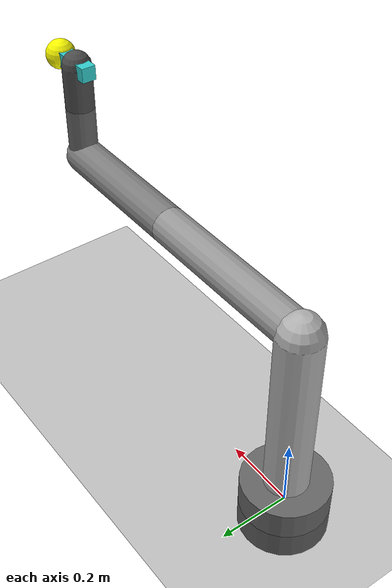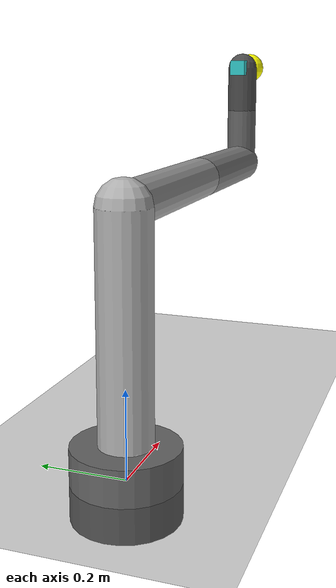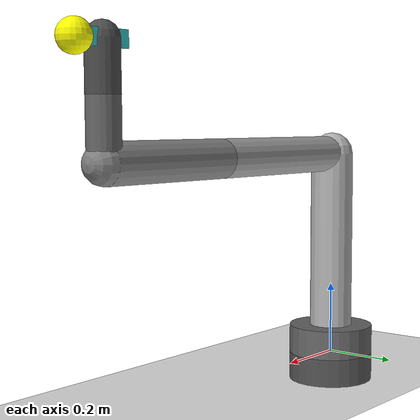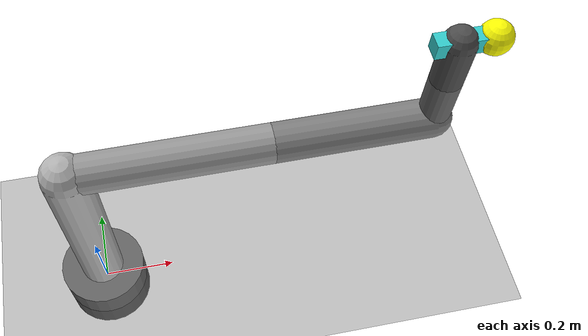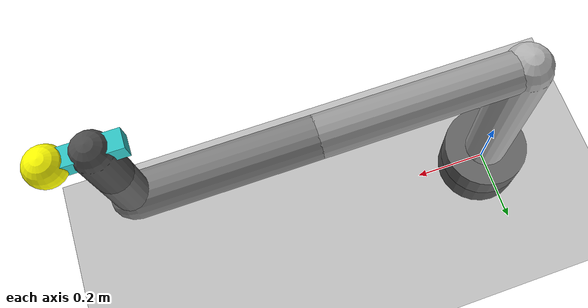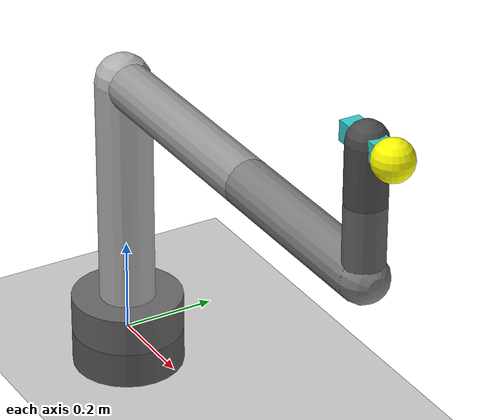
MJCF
<mujoco model="simple_6dof_serial_arm">
  <compiler angle="radian"/>
  <option timestep="0.01" gravity="0 0 -9.81"/>

  <worldbody>
    <light diffuse="0.8 0.8 0.8" pos="2 2 3" dir="-2 -2 -3"/>
    <geom type="plane" size="2 2 0.1" rgba="0.2 0.2 0.2 1"/>

    <!-- Base / ground link -->
    <body name="base" pos="0 0 0">
      <geom type="cylinder" size="0.12 0.08" rgba="0.4 0.4 0.4 1" euler="0 0 0"/>

      <!-- Joint 1: waist (Z axis) -->
      <body name="link1" pos="0 0 0.08">
        <joint name="joint1" type="hinge" axis="0 0 1" range="-3.14 3.14" damping="0.5"/>
        <geom type="capsule" fromto="0 0 0 0 0 0.5" size="0.06" rgba="0.7 0.7 0.7 1"/>

        <!-- Joint 2: shoulder (Y axis) -->
        <body name="link2" pos="0 0 0.5">
          <joint name="joint2" type="hinge" axis="0 1 0" range="-1.57 1.57" damping="0.5"/>
          <geom type="capsule" fromto="0 0 0 0.5 0 0" size="0.05" rgba="0.6 0.6 0.6 1"/>

          <!-- Joint 3: elbow (Y axis) -->
          <body name="link3" pos="0.5 0 0">
            <joint name="joint3" type="hinge" axis="0 1 0" range="-1.57 1.57" damping="0.5"/>
            <geom type="capsule" fromto="0 0 0 0.4 0 0" size="0.05" rgba="0.5 0.5 0.5 1"/>

            <!-- Joint 4: wrist roll (X axis) -->
            <body name="link4" pos="0.4 0 0">
              <joint name="joint4" type="hinge" axis="1 0 0" range="-3.14 3.14" damping="0.2"/>
              <geom type="capsule" fromto="0 0 0 0 0 0.15" size="0.04" rgba="0.4 0.4 0.4 1"/>

              <!-- Joint 5: wrist pitch (Y axis) -->
              <body name="link5" pos="0 0 0.15">
                <joint name="joint5" type="hinge" axis="0 1 0" range="-1.57 1.57" damping="0.2"/>
                <geom type="capsule" fromto="0 0 0 0 0 0.12" size="0.04" rgba="0.3 0.3 0.3 1"/>

                <!-- Joint 6: wrist yaw (Z axis) -->
                <body name="link6" pos="0 0 0.12">
                  <joint name="joint6" type="hinge" axis="0 0 1" range="-3.14 3.14" damping="0.2"/>
                  <geom type="box" size="0.06 0.02 0.02" rgba="0.2 0.8 0.8 1"/>

                  <!-- End-effector site -->
                  <site name="ee" pos="0.08 0 0" size="0.04" rgba="1 1 0 1"/>
                </body>
              </body>
            </body>
          </body>
        </body>
      </body>
    </body>
  </worldbody>

  <actuator>
    <position joint="joint1" kp="100" ctrlrange="-3.14 3.14"/>
    <position joint="joint2" kp="100" ctrlrange="-1.57 1.57"/>
    <position joint="joint3" kp="80" ctrlrange="-1.57 1.57"/>
    <position joint="joint4" kp="30" ctrlrange="-3.14 3.14"/>
    <position joint="joint5" kp="30" ctrlrange="-1.57 1.57"/>
    <position joint="joint6" kp="10" ctrlrange="-3.14 3.14"/>
  </actuator>
</mujoco>
